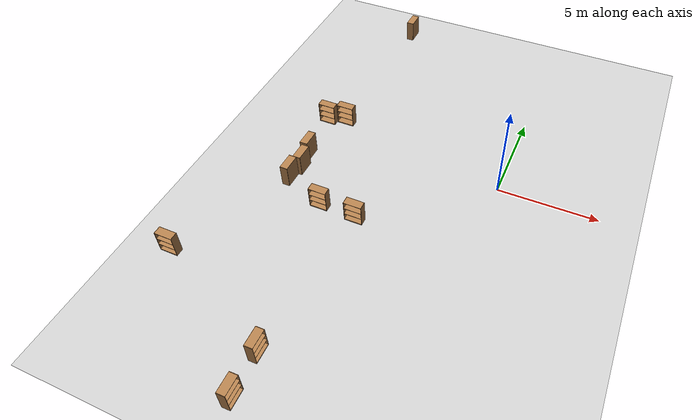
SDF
<sdf version="1.6">
 <world name="default">
  <model name="ground_plane">
   <static>1</static>
   <link name="link">
    <collision name="collision">
     <geometry><plane><normal>0 0 1</normal><size>100 100</size></plane></geometry>
     <surface>
      <contact><collide_bitmask>65535</collide_bitmask></contact>
      <friction><ode><mu>100</mu><mu2>50</mu2></ode></friction>
     </surface>
    </collision>
    <visual name="visual">
     <cast_shadows>0</cast_shadows>
     <geometry><plane><normal>0 0 1</normal><size>100 100</size></plane></geometry>
     <material>
      <script><uri>file://media/materials/scripts/gazebo.material</uri><name>Gazebo/Grey</name></script>
     </material>
    </visual>
   </link>
  </model>
  <model name="bookshelf_clone_clone_clone_0_clone_0_clone_3_clone_0_clone_clone_0">
   <static>1</static>
   <link name="link">
    <inertial><mass>1</mass></inertial>
    <collision name="back">
     <pose>0 0.005 0.6 0 -0 0</pose>
     <geometry><box><size>0.9 0.01 1.2</size></box></geometry>
    </collision>
    <visual name="visual1">
     <pose>0 0.005 0.6 0 -0 0</pose>
     <geometry><box><size>0.9 0.01 1.2</size></box></geometry>
     <material>
      <script><uri>file://media/materials/scripts/gazebo.material</uri><name>Gazebo/Wood</name></script>
     </material>
    </visual>
    <collision name="left_side">
     <pose>0.45 -0.195 0.6 0 -0 0</pose>
     <geometry><box><size>0.02 0.4 1.2</size></box></geometry>
    </collision>
    <visual name="visual2">
     <pose>0.45 -0.195 0.6 0 -0 0</pose>
     <geometry><box><size>0.02 0.4 1.2</size></box></geometry>
     <material>
      <script><uri>file://media/materials/scripts/gazebo.material</uri><name>Gazebo/Wood</name></script>
     </material>
    </visual>
    <collision name="right_side">
     <pose>-0.45 -0.195 0.6 0 -0 0</pose>
     <geometry><box><size>0.02 0.4 1.2</size></box></geometry>
    </collision>
    <visual name="visual3">
     <pose>-0.45 -0.195 0.6 0 -0 0</pose>
     <geometry><box><size>0.02 0.4 1.2</size></box></geometry>
     <material>
      <script><uri>file://media/materials/scripts/gazebo.material</uri><name>Gazebo/Wood</name></script>
     </material>
    </visual>
    <collision name="bottom">
     <pose>0 -0.195 0.03 0 -0 0</pose>
     <geometry><box><size>0.88 0.4 0.06</size></box></geometry>
    </collision>
    <visual name="visual4">
     <pose>0 -0.195 0.03 0 -0 0</pose>
     <geometry><box><size>0.88 0.4 0.06</size></box></geometry>
     <material>
      <script><uri>file://media/materials/scripts/gazebo.material</uri><name>Gazebo/Wood</name></script>
     </material>
    </visual>
    <collision name="top">
     <pose>0 -0.195 1.19 0 -0 0</pose>
     <geometry><box><size>0.88 0.4 0.02</size></box></geometry>
    </collision>
    <visual name="visual5">
     <pose>0 -0.195 1.19 0 -0 0</pose>
     <geometry><box><size>0.88 0.4 0.02</size></box></geometry>
     <material>
      <script><uri>file://media/materials/scripts/gazebo.material</uri><name>Gazebo/Wood</name></script>
     </material>
    </visual>
    <collision name="low_shelf">
     <pose>0 -0.195 0.43 0 -0 0</pose>
     <geometry><box><size>0.88 0.4 0.02</size></box></geometry>
    </collision>
    <visual name="visual6">
     <pose>0 -0.195 0.43 0 -0 0</pose>
     <geometry><box><size>0.88 0.4 0.02</size></box></geometry>
     <material>
      <script><uri>file://media/materials/scripts/gazebo.material</uri><name>Gazebo/Wood</name></script>
     </material>
    </visual>
    <collision name="high_shelf">
     <pose>0 -0.195 0.8 0 -0 0</pose>
     <geometry><box><size>0.88 0.4 0.02</size></box></geometry>
    </collision>
    <visual name="visual7">
     <pose>0 -0.195 0.8 0 -0 0</pose>
     <geometry><box><size>0.88 0.4 0.02</size></box></geometry>
     <material>
      <script><uri>file://media/materials/scripts/gazebo.material</uri><name>Gazebo/Wood</name></script>
     </material>
    </visual>
   </link>
   <pose>-5.6824 -4.32461 0 0 -0 0</pose>
  </model>
  <model name="bookshelf_clone_clone_clone_0_clone_0_clone_3_clone_0_clone_clone_2">
   <static>1</static>
   <link name="link">
    <inertial><mass>1</mass></inertial>
    <collision name="back">
     <pose>0 0.005 0.6 0 -0 0</pose>
     <geometry><box><size>0.9 0.01 1.2</size></box></geometry>
    </collision>
    <visual name="visual1">
     <pose>0 0.005 0.6 0 -0 0</pose>
     <geometry><box><size>0.9 0.01 1.2</size></box></geometry>
     <material>
      <script><uri>file://media/materials/scripts/gazebo.material</uri><name>Gazebo/Wood</name></script>
     </material>
    </visual>
    <collision name="left_side">
     <pose>0.45 -0.195 0.6 0 -0 0</pose>
     <geometry><box><size>0.02 0.4 1.2</size></box></geometry>
    </collision>
    <visual name="visual2">
     <pose>0.45 -0.195 0.6 0 -0 0</pose>
     <geometry><box><size>0.02 0.4 1.2</size></box></geometry>
     <material>
      <script><uri>file://media/materials/scripts/gazebo.material</uri><name>Gazebo/Wood</name></script>
     </material>
    </visual>
    <collision name="right_side">
     <pose>-0.45 -0.195 0.6 0 -0 0</pose>
     <geometry><box><size>0.02 0.4 1.2</size></box></geometry>
    </collision>
    <visual name="visual3">
     <pose>-0.45 -0.195 0.6 0 -0 0</pose>
     <geometry><box><size>0.02 0.4 1.2</size></box></geometry>
     <material>
      <script><uri>file://media/materials/scripts/gazebo.material</uri><name>Gazebo/Wood</name></script>
     </material>
    </visual>
    <collision name="bottom">
     <pose>0 -0.195 0.03 0 -0 0</pose>
     <geometry><box><size>0.88 0.4 0.06</size></box></geometry>
    </collision>
    <visual name="visual4">
     <pose>0 -0.195 0.03 0 -0 0</pose>
     <geometry><box><size>0.88 0.4 0.06</size></box></geometry>
     <material>
      <script><uri>file://media/materials/scripts/gazebo.material</uri><name>Gazebo/Wood</name></script>
     </material>
    </visual>
    <collision name="top">
     <pose>0 -0.195 1.19 0 -0 0</pose>
     <geometry><box><size>0.88 0.4 0.02</size></box></geometry>
    </collision>
    <visual name="visual5">
     <pose>0 -0.195 1.19 0 -0 0</pose>
     <geometry><box><size>0.88 0.4 0.02</size></box></geometry>
     <material>
      <script><uri>file://media/materials/scripts/gazebo.material</uri><name>Gazebo/Wood</name></script>
     </material>
    </visual>
    <collision name="low_shelf">
     <pose>0 -0.195 0.43 0 -0 0</pose>
     <geometry><box><size>0.88 0.4 0.02</size></box></geometry>
    </collision>
    <visual name="visual6">
     <pose>0 -0.195 0.43 0 -0 0</pose>
     <geometry><box><size>0.88 0.4 0.02</size></box></geometry>
     <material>
      <script><uri>file://media/materials/scripts/gazebo.material</uri><name>Gazebo/Wood</name></script>
     </material>
    </visual>
    <collision name="high_shelf">
     <pose>0 -0.195 0.8 0 -0 0</pose>
     <geometry><box><size>0.88 0.4 0.02</size></box></geometry>
    </collision>
    <visual name="visual7">
     <pose>0 -0.195 0.8 0 -0 0</pose>
     <geometry><box><size>0.88 0.4 0.02</size></box></geometry>
     <material>
      <script><uri>file://media/materials/scripts/gazebo.material</uri><name>Gazebo/Wood</name></script>
     </material>
    </visual>
   </link>
   <pose>-7.59607 -4.21389 0 0 -0 0</pose>
  </model>
  <model name="bookshelf_clone_0_clone_clone_2_clone_2_clone_3_clone_clone_clone_2_clone_1_clone_clone_0_clone">
   <static>1</static>
   <link name="link">
    <inertial><mass>1</mass></inertial>
    <collision name="back">
     <pose>0 0.005 0.6 0 -0 0</pose>
     <geometry><box><size>0.9 0.01 1.2</size></box></geometry>
    </collision>
    <visual name="visual1">
     <pose>0 0.005 0.6 0 -0 0</pose>
     <geometry><box><size>0.9 0.01 1.2</size></box></geometry>
     <material>
      <script><uri>file://media/materials/scripts/gazebo.material</uri><name>Gazebo/Wood</name></script>
     </material>
    </visual>
    <collision name="left_side">
     <pose>0.45 -0.195 0.6 0 -0 0</pose>
     <geometry><box><size>0.02 0.4 1.2</size></box></geometry>
    </collision>
    <visual name="visual2">
     <pose>0.45 -0.195 0.6 0 -0 0</pose>
     <geometry><box><size>0.02 0.4 1.2</size></box></geometry>
     <material>
      <script><uri>file://media/materials/scripts/gazebo.material</uri><name>Gazebo/Wood</name></script>
     </material>
    </visual>
    <collision name="right_side">
     <pose>-0.45 -0.195 0.6 0 -0 0</pose>
     <geometry><box><size>0.02 0.4 1.2</size></box></geometry>
    </collision>
    <visual name="visual3">
     <pose>-0.45 -0.195 0.6 0 -0 0</pose>
     <geometry><box><size>0.02 0.4 1.2</size></box></geometry>
     <material>
      <script><uri>file://media/materials/scripts/gazebo.material</uri><name>Gazebo/Wood</name></script>
     </material>
    </visual>
    <collision name="bottom">
     <pose>0 -0.195 0.03 0 -0 0</pose>
     <geometry><box><size>0.88 0.4 0.06</size></box></geometry>
    </collision>
    <visual name="visual4">
     <pose>0 -0.195 0.03 0 -0 0</pose>
     <geometry><box><size>0.88 0.4 0.06</size></box></geometry>
     <material>
      <script><uri>file://media/materials/scripts/gazebo.material</uri><name>Gazebo/Wood</name></script>
     </material>
    </visual>
    <collision name="top">
     <pose>0 -0.195 1.19 0 -0 0</pose>
     <geometry><box><size>0.88 0.4 0.02</size></box></geometry>
    </collision>
    <visual name="visual5">
     <pose>0 -0.195 1.19 0 -0 0</pose>
     <geometry><box><size>0.88 0.4 0.02</size></box></geometry>
     <material>
      <script><uri>file://media/materials/scripts/gazebo.material</uri><name>Gazebo/Wood</name></script>
     </material>
    </visual>
    <collision name="low_shelf">
     <pose>0 -0.195 0.43 0 -0 0</pose>
     <geometry><box><size>0.88 0.4 0.02</size></box></geometry>
    </collision>
    <visual name="visual6">
     <pose>0 -0.195 0.43 0 -0 0</pose>
     <geometry><box><size>0.88 0.4 0.02</size></box></geometry>
     <material>
      <script><uri>file://media/materials/scripts/gazebo.material</uri><name>Gazebo/Wood</name></script>
     </material>
    </visual>
    <collision name="high_shelf">
     <pose>0 -0.195 0.8 0 -0 0</pose>
     <geometry><box><size>0.88 0.4 0.02</size></box></geometry>
    </collision>
    <visual name="visual7">
     <pose>0 -0.195 0.8 0 -0 0</pose>
     <geometry><box><size>0.88 0.4 0.02</size></box></geometry>
     <material>
      <script><uri>file://media/materials/scripts/gazebo.material</uri><name>Gazebo/Wood</name></script>
     </material>
    </visual>
   </link>
   <pose>-6.41247 -12.2346 0 0 -0 1.58577</pose>
  </model>
  <model name="bookshelf_clone_0_clone_clone_2_clone_2_clone_3_clone_clone_clone_2_clone_1_clone_clone_0_clone_1">
   <static>1</static>
   <link name="link">
    <inertial><mass>1</mass></inertial>
    <collision name="back">
     <pose>0 0.005 0.6 0 -0 0</pose>
     <geometry><box><size>0.9 0.01 1.2</size></box></geometry>
    </collision>
    <visual name="visual1">
     <pose>0 0.005 0.6 0 -0 0</pose>
     <geometry><box><size>0.9 0.01 1.2</size></box></geometry>
     <material>
      <script><uri>file://media/materials/scripts/gazebo.material</uri><name>Gazebo/Wood</name></script>
     </material>
    </visual>
    <collision name="left_side">
     <pose>0.45 -0.195 0.6 0 -0 0</pose>
     <geometry><box><size>0.02 0.4 1.2</size></box></geometry>
    </collision>
    <visual name="visual2">
     <pose>0.45 -0.195 0.6 0 -0 0</pose>
     <geometry><box><size>0.02 0.4 1.2</size></box></geometry>
     <material>
      <script><uri>file://media/materials/scripts/gazebo.material</uri><name>Gazebo/Wood</name></script>
     </material>
    </visual>
    <collision name="right_side">
     <pose>-0.45 -0.195 0.6 0 -0 0</pose>
     <geometry><box><size>0.02 0.4 1.2</size></box></geometry>
    </collision>
    <visual name="visual3">
     <pose>-0.45 -0.195 0.6 0 -0 0</pose>
     <geometry><box><size>0.02 0.4 1.2</size></box></geometry>
     <material>
      <script><uri>file://media/materials/scripts/gazebo.material</uri><name>Gazebo/Wood</name></script>
     </material>
    </visual>
    <collision name="bottom">
     <pose>0 -0.195 0.03 0 -0 0</pose>
     <geometry><box><size>0.88 0.4 0.06</size></box></geometry>
    </collision>
    <visual name="visual4">
     <pose>0 -0.195 0.03 0 -0 0</pose>
     <geometry><box><size>0.88 0.4 0.06</size></box></geometry>
     <material>
      <script><uri>file://media/materials/scripts/gazebo.material</uri><name>Gazebo/Wood</name></script>
     </material>
    </visual>
    <collision name="top">
     <pose>0 -0.195 1.19 0 -0 0</pose>
     <geometry><box><size>0.88 0.4 0.02</size></box></geometry>
    </collision>
    <visual name="visual5">
     <pose>0 -0.195 1.19 0 -0 0</pose>
     <geometry><box><size>0.88 0.4 0.02</size></box></geometry>
     <material>
      <script><uri>file://media/materials/scripts/gazebo.material</uri><name>Gazebo/Wood</name></script>
     </material>
    </visual>
    <collision name="low_shelf">
     <pose>0 -0.195 0.43 0 -0 0</pose>
     <geometry><box><size>0.88 0.4 0.02</size></box></geometry>
    </collision>
    <visual name="visual6">
     <pose>0 -0.195 0.43 0 -0 0</pose>
     <geometry><box><size>0.88 0.4 0.02</size></box></geometry>
     <material>
      <script><uri>file://media/materials/scripts/gazebo.material</uri><name>Gazebo/Wood</name></script>
     </material>
    </visual>
    <collision name="high_shelf">
     <pose>0 -0.195 0.8 0 -0 0</pose>
     <geometry><box><size>0.88 0.4 0.02</size></box></geometry>
    </collision>
    <visual name="visual7">
     <pose>0 -0.195 0.8 0 -0 0</pose>
     <geometry><box><size>0.88 0.4 0.02</size></box></geometry>
     <material>
      <script><uri>file://media/materials/scripts/gazebo.material</uri><name>Gazebo/Wood</name></script>
     </material>
    </visual>
   </link>
   <pose>-6.31078 -14.2434 0 0 -0 1.58577</pose>
  </model>
  <model name="bookshelf_clone_clone_clone_0_clone_0_clone_3_clone_0_clone_clone_2_clone">
   <static>1</static>
   <link name="link">
    <inertial><mass>1</mass></inertial>
    <collision name="back">
     <pose>0 0.005 0.6 0 -0 0</pose>
     <geometry><box><size>0.9 0.01 1.2</size></box></geometry>
    </collision>
    <visual name="visual1">
     <pose>0 0.005 0.6 0 -0 0</pose>
     <geometry><box><size>0.9 0.01 1.2</size></box></geometry>
     <material>
      <script><uri>file://media/materials/scripts/gazebo.material</uri><name>Gazebo/Wood</name></script>
     </material>
    </visual>
    <collision name="left_side">
     <pose>0.45 -0.195 0.6 0 -0 0</pose>
     <geometry><box><size>0.02 0.4 1.2</size></box></geometry>
    </collision>
    <visual name="visual2">
     <pose>0.45 -0.195 0.6 0 -0 0</pose>
     <geometry><box><size>0.02 0.4 1.2</size></box></geometry>
     <material>
      <script><uri>file://media/materials/scripts/gazebo.material</uri><name>Gazebo/Wood</name></script>
     </material>
    </visual>
    <collision name="right_side">
     <pose>-0.45 -0.195 0.6 0 -0 0</pose>
     <geometry><box><size>0.02 0.4 1.2</size></box></geometry>
    </collision>
    <visual name="visual3">
     <pose>-0.45 -0.195 0.6 0 -0 0</pose>
     <geometry><box><size>0.02 0.4 1.2</size></box></geometry>
     <material>
      <script><uri>file://media/materials/scripts/gazebo.material</uri><name>Gazebo/Wood</name></script>
     </material>
    </visual>
    <collision name="bottom">
     <pose>0 -0.195 0.03 0 -0 0</pose>
     <geometry><box><size>0.88 0.4 0.06</size></box></geometry>
    </collision>
    <visual name="visual4">
     <pose>0 -0.195 0.03 0 -0 0</pose>
     <geometry><box><size>0.88 0.4 0.06</size></box></geometry>
     <material>
      <script><uri>file://media/materials/scripts/gazebo.material</uri><name>Gazebo/Wood</name></script>
     </material>
    </visual>
    <collision name="top">
     <pose>0 -0.195 1.19 0 -0 0</pose>
     <geometry><box><size>0.88 0.4 0.02</size></box></geometry>
    </collision>
    <visual name="visual5">
     <pose>0 -0.195 1.19 0 -0 0</pose>
     <geometry><box><size>0.88 0.4 0.02</size></box></geometry>
     <material>
      <script><uri>file://media/materials/scripts/gazebo.material</uri><name>Gazebo/Wood</name></script>
     </material>
    </visual>
    <collision name="low_shelf">
     <pose>0 -0.195 0.43 0 -0 0</pose>
     <geometry><box><size>0.88 0.4 0.02</size></box></geometry>
    </collision>
    <visual name="visual6">
     <pose>0 -0.195 0.43 0 -0 0</pose>
     <geometry><box><size>0.88 0.4 0.02</size></box></geometry>
     <material>
      <script><uri>file://media/materials/scripts/gazebo.material</uri><name>Gazebo/Wood</name></script>
     </material>
    </visual>
    <collision name="high_shelf">
     <pose>0 -0.195 0.8 0 -0 0</pose>
     <geometry><box><size>0.88 0.4 0.02</size></box></geometry>
    </collision>
    <visual name="visual7">
     <pose>0 -0.195 0.8 0 -0 0</pose>
     <geometry><box><size>0.88 0.4 0.02</size></box></geometry>
     <material>
      <script><uri>file://media/materials/scripts/gazebo.material</uri><name>Gazebo/Wood</name></script>
     </material>
    </visual>
   </link>
   <pose>-12.578 -9.24585 0 0 -0 0</pose>
  </model>
  <model name="bookshelf_clone_0_clone_clone_2_clone_2_clone_3_clone_clone_2_clone_0_clone_clone">
   <static>1</static>
   <link name="link">
    <inertial><mass>1</mass></inertial>
    <collision name="back">
     <pose>0 0.005 0.6 0 -0 0</pose>
     <geometry><box><size>0.9 0.01 1.2</size></box></geometry>
    </collision>
    <visual name="visual1">
     <pose>0 0.005 0.6 0 -0 0</pose>
     <geometry><box><size>0.9 0.01 1.2</size></box></geometry>
     <material>
      <script><uri>file://media/materials/scripts/gazebo.material</uri><name>Gazebo/Wood</name></script>
     </material>
    </visual>
    <collision name="left_side">
     <pose>0.45 -0.195 0.6 0 -0 0</pose>
     <geometry><box><size>0.02 0.4 1.2</size></box></geometry>
    </collision>
    <visual name="visual2">
     <pose>0.45 -0.195 0.6 0 -0 0</pose>
     <geometry><box><size>0.02 0.4 1.2</size></box></geometry>
     <material>
      <script><uri>file://media/materials/scripts/gazebo.material</uri><name>Gazebo/Wood</name></script>
     </material>
    </visual>
    <collision name="right_side">
     <pose>-0.45 -0.195 0.6 0 -0 0</pose>
     <geometry><box><size>0.02 0.4 1.2</size></box></geometry>
    </collision>
    <visual name="visual3">
     <pose>-0.45 -0.195 0.6 0 -0 0</pose>
     <geometry><box><size>0.02 0.4 1.2</size></box></geometry>
     <material>
      <script><uri>file://media/materials/scripts/gazebo.material</uri><name>Gazebo/Wood</name></script>
     </material>
    </visual>
    <collision name="bottom">
     <pose>0 -0.195 0.03 0 -0 0</pose>
     <geometry><box><size>0.88 0.4 0.06</size></box></geometry>
    </collision>
    <visual name="visual4">
     <pose>0 -0.195 0.03 0 -0 0</pose>
     <geometry><box><size>0.88 0.4 0.06</size></box></geometry>
     <material>
      <script><uri>file://media/materials/scripts/gazebo.material</uri><name>Gazebo/Wood</name></script>
     </material>
    </visual>
    <collision name="top">
     <pose>0 -0.195 1.19 0 -0 0</pose>
     <geometry><box><size>0.88 0.4 0.02</size></box></geometry>
    </collision>
    <visual name="visual5">
     <pose>0 -0.195 1.19 0 -0 0</pose>
     <geometry><box><size>0.88 0.4 0.02</size></box></geometry>
     <material>
      <script><uri>file://media/materials/scripts/gazebo.material</uri><name>Gazebo/Wood</name></script>
     </material>
    </visual>
    <collision name="low_shelf">
     <pose>0 -0.195 0.43 0 -0 0</pose>
     <geometry><box><size>0.88 0.4 0.02</size></box></geometry>
    </collision>
    <visual name="visual6">
     <pose>0 -0.195 0.43 0 -0 0</pose>
     <geometry><box><size>0.88 0.4 0.02</size></box></geometry>
     <material>
      <script><uri>file://media/materials/scripts/gazebo.material</uri><name>Gazebo/Wood</name></script>
     </material>
    </visual>
    <collision name="high_shelf">
     <pose>0 -0.195 0.8 0 -0 0</pose>
     <geometry><box><size>0.88 0.4 0.02</size></box></geometry>
    </collision>
    <visual name="visual7">
     <pose>0 -0.195 0.8 0 -0 0</pose>
     <geometry><box><size>0.88 0.4 0.02</size></box></geometry>
     <material>
      <script><uri>file://media/materials/scripts/gazebo.material</uri><name>Gazebo/Wood</name></script>
     </material>
    </visual>
   </link>
   <pose>-9.60302 -3.43122 0 0 0 -1.58271</pose>
  </model>
  <model name="bookshelf_clone_0_clone_clone_2_clone_2_clone_3_clone_clone_2_clone_0_clone_clone_0">
   <static>1</static>
   <link name="link">
    <inertial><mass>1</mass></inertial>
    <collision name="back">
     <pose>0 0.005 0.6 0 -0 0</pose>
     <geometry><box><size>0.9 0.01 1.2</size></box></geometry>
    </collision>
    <visual name="visual1">
     <pose>0 0.005 0.6 0 -0 0</pose>
     <geometry><box><size>0.9 0.01 1.2</size></box></geometry>
     <material>
      <script><uri>file://media/materials/scripts/gazebo.material</uri><name>Gazebo/Wood</name></script>
     </material>
    </visual>
    <collision name="left_side">
     <pose>0.45 -0.195 0.6 0 -0 0</pose>
     <geometry><box><size>0.02 0.4 1.2</size></box></geometry>
    </collision>
    <visual name="visual2">
     <pose>0.45 -0.195 0.6 0 -0 0</pose>
     <geometry><box><size>0.02 0.4 1.2</size></box></geometry>
     <material>
      <script><uri>file://media/materials/scripts/gazebo.material</uri><name>Gazebo/Wood</name></script>
     </material>
    </visual>
    <collision name="right_side">
     <pose>-0.45 -0.195 0.6 0 -0 0</pose>
     <geometry><box><size>0.02 0.4 1.2</size></box></geometry>
    </collision>
    <visual name="visual3">
     <pose>-0.45 -0.195 0.6 0 -0 0</pose>
     <geometry><box><size>0.02 0.4 1.2</size></box></geometry>
     <material>
      <script><uri>file://media/materials/scripts/gazebo.material</uri><name>Gazebo/Wood</name></script>
     </material>
    </visual>
    <collision name="bottom">
     <pose>0 -0.195 0.03 0 -0 0</pose>
     <geometry><box><size>0.88 0.4 0.06</size></box></geometry>
    </collision>
    <visual name="visual4">
     <pose>0 -0.195 0.03 0 -0 0</pose>
     <geometry><box><size>0.88 0.4 0.06</size></box></geometry>
     <material>
      <script><uri>file://media/materials/scripts/gazebo.material</uri><name>Gazebo/Wood</name></script>
     </material>
    </visual>
    <collision name="top">
     <pose>0 -0.195 1.19 0 -0 0</pose>
     <geometry><box><size>0.88 0.4 0.02</size></box></geometry>
    </collision>
    <visual name="visual5">
     <pose>0 -0.195 1.19 0 -0 0</pose>
     <geometry><box><size>0.88 0.4 0.02</size></box></geometry>
     <material>
      <script><uri>file://media/materials/scripts/gazebo.material</uri><name>Gazebo/Wood</name></script>
     </material>
    </visual>
    <collision name="low_shelf">
     <pose>0 -0.195 0.43 0 -0 0</pose>
     <geometry><box><size>0.88 0.4 0.02</size></box></geometry>
    </collision>
    <visual name="visual6">
     <pose>0 -0.195 0.43 0 -0 0</pose>
     <geometry><box><size>0.88 0.4 0.02</size></box></geometry>
     <material>
      <script><uri>file://media/materials/scripts/gazebo.material</uri><name>Gazebo/Wood</name></script>
     </material>
    </visual>
    <collision name="high_shelf">
     <pose>0 -0.195 0.8 0 -0 0</pose>
     <geometry><box><size>0.88 0.4 0.02</size></box></geometry>
    </collision>
    <visual name="visual7">
     <pose>0 -0.195 0.8 0 -0 0</pose>
     <geometry><box><size>0.88 0.4 0.02</size></box></geometry>
     <material>
      <script><uri>file://media/materials/scripts/gazebo.material</uri><name>Gazebo/Wood</name></script>
     </material>
    </visual>
   </link>
   <pose>-9.40043 -2.52177 0 0 0 -1.58271</pose>
  </model>
  <model name="bookshelf_clone_0_clone_clone_2_clone_2_clone_3_clone_clone_2_clone_0_clone_clone_1">
   <static>1</static>
   <link name="link">
    <inertial><mass>1</mass></inertial>
    <collision name="back">
     <pose>0 0.005 0.6 0 -0 0</pose>
     <geometry><box><size>0.9 0.01 1.2</size></box></geometry>
    </collision>
    <visual name="visual1">
     <pose>0 0.005 0.6 0 -0 0</pose>
     <geometry><box><size>0.9 0.01 1.2</size></box></geometry>
     <material>
      <script><uri>file://media/materials/scripts/gazebo.material</uri><name>Gazebo/Wood</name></script>
     </material>
    </visual>
    <collision name="left_side">
     <pose>0.45 -0.195 0.6 0 -0 0</pose>
     <geometry><box><size>0.02 0.4 1.2</size></box></geometry>
    </collision>
    <visual name="visual2">
     <pose>0.45 -0.195 0.6 0 -0 0</pose>
     <geometry><box><size>0.02 0.4 1.2</size></box></geometry>
     <material>
      <script><uri>file://media/materials/scripts/gazebo.material</uri><name>Gazebo/Wood</name></script>
     </material>
    </visual>
    <collision name="right_side">
     <pose>-0.45 -0.195 0.6 0 -0 0</pose>
     <geometry><box><size>0.02 0.4 1.2</size></box></geometry>
    </collision>
    <visual name="visual3">
     <pose>-0.45 -0.195 0.6 0 -0 0</pose>
     <geometry><box><size>0.02 0.4 1.2</size></box></geometry>
     <material>
      <script><uri>file://media/materials/scripts/gazebo.material</uri><name>Gazebo/Wood</name></script>
     </material>
    </visual>
    <collision name="bottom">
     <pose>0 -0.195 0.03 0 -0 0</pose>
     <geometry><box><size>0.88 0.4 0.06</size></box></geometry>
    </collision>
    <visual name="visual4">
     <pose>0 -0.195 0.03 0 -0 0</pose>
     <geometry><box><size>0.88 0.4 0.06</size></box></geometry>
     <material>
      <script><uri>file://media/materials/scripts/gazebo.material</uri><name>Gazebo/Wood</name></script>
     </material>
    </visual>
    <collision name="top">
     <pose>0 -0.195 1.19 0 -0 0</pose>
     <geometry><box><size>0.88 0.4 0.02</size></box></geometry>
    </collision>
    <visual name="visual5">
     <pose>0 -0.195 1.19 0 -0 0</pose>
     <geometry><box><size>0.88 0.4 0.02</size></box></geometry>
     <material>
      <script><uri>file://media/materials/scripts/gazebo.material</uri><name>Gazebo/Wood</name></script>
     </material>
    </visual>
    <collision name="low_shelf">
     <pose>0 -0.195 0.43 0 -0 0</pose>
     <geometry><box><size>0.88 0.4 0.02</size></box></geometry>
    </collision>
    <visual name="visual6">
     <pose>0 -0.195 0.43 0 -0 0</pose>
     <geometry><box><size>0.88 0.4 0.02</size></box></geometry>
     <material>
      <script><uri>file://media/materials/scripts/gazebo.material</uri><name>Gazebo/Wood</name></script>
     </material>
    </visual>
    <collision name="high_shelf">
     <pose>0 -0.195 0.8 0 -0 0</pose>
     <geometry><box><size>0.88 0.4 0.02</size></box></geometry>
    </collision>
    <visual name="visual7">
     <pose>0 -0.195 0.8 0 -0 0</pose>
     <geometry><box><size>0.88 0.4 0.02</size></box></geometry>
     <material>
      <script><uri>file://media/materials/scripts/gazebo.material</uri><name>Gazebo/Wood</name></script>
     </material>
    </visual>
   </link>
   <pose>-9.56984 -1.50771 0 0 0 -1.58271</pose>
  </model>
  <model name="bookshelf_clone_clone_clone_0_clone_0_clone_3_clone_0_clone_clone_2_clone_0">
   <static>1</static>
   <link name="link">
    <inertial><mass>1</mass></inertial>
    <collision name="back">
     <pose>0 0.005 0.6 0 -0 0</pose>
     <geometry><box><size>0.9 0.01 1.2</size></box></geometry>
    </collision>
    <visual name="visual1">
     <pose>0 0.005 0.6 0 -0 0</pose>
     <geometry><box><size>0.9 0.01 1.2</size></box></geometry>
     <material>
      <script><uri>file://media/materials/scripts/gazebo.material</uri><name>Gazebo/Wood</name></script>
     </material>
    </visual>
    <collision name="left_side">
     <pose>0.45 -0.195 0.6 0 -0 0</pose>
     <geometry><box><size>0.02 0.4 1.2</size></box></geometry>
    </collision>
    <visual name="visual2">
     <pose>0.45 -0.195 0.6 0 -0 0</pose>
     <geometry><box><size>0.02 0.4 1.2</size></box></geometry>
     <material>
      <script><uri>file://media/materials/scripts/gazebo.material</uri><name>Gazebo/Wood</name></script>
     </material>
    </visual>
    <collision name="right_side">
     <pose>-0.45 -0.195 0.6 0 -0 0</pose>
     <geometry><box><size>0.02 0.4 1.2</size></box></geometry>
    </collision>
    <visual name="visual3">
     <pose>-0.45 -0.195 0.6 0 -0 0</pose>
     <geometry><box><size>0.02 0.4 1.2</size></box></geometry>
     <material>
      <script><uri>file://media/materials/scripts/gazebo.material</uri><name>Gazebo/Wood</name></script>
     </material>
    </visual>
    <collision name="bottom">
     <pose>0 -0.195 0.03 0 -0 0</pose>
     <geometry><box><size>0.88 0.4 0.06</size></box></geometry>
    </collision>
    <visual name="visual4">
     <pose>0 -0.195 0.03 0 -0 0</pose>
     <geometry><box><size>0.88 0.4 0.06</size></box></geometry>
     <material>
      <script><uri>file://media/materials/scripts/gazebo.material</uri><name>Gazebo/Wood</name></script>
     </material>
    </visual>
    <collision name="top">
     <pose>0 -0.195 1.19 0 -0 0</pose>
     <geometry><box><size>0.88 0.4 0.02</size></box></geometry>
    </collision>
    <visual name="visual5">
     <pose>0 -0.195 1.19 0 -0 0</pose>
     <geometry><box><size>0.88 0.4 0.02</size></box></geometry>
     <material>
      <script><uri>file://media/materials/scripts/gazebo.material</uri><name>Gazebo/Wood</name></script>
     </material>
    </visual>
    <collision name="low_shelf">
     <pose>0 -0.195 0.43 0 -0 0</pose>
     <geometry><box><size>0.88 0.4 0.02</size></box></geometry>
    </collision>
    <visual name="visual6">
     <pose>0 -0.195 0.43 0 -0 0</pose>
     <geometry><box><size>0.88 0.4 0.02</size></box></geometry>
     <material>
      <script><uri>file://media/materials/scripts/gazebo.material</uri><name>Gazebo/Wood</name></script>
     </material>
    </visual>
    <collision name="high_shelf">
     <pose>0 -0.195 0.8 0 -0 0</pose>
     <geometry><box><size>0.88 0.4 0.02</size></box></geometry>
    </collision>
    <visual name="visual7">
     <pose>0 -0.195 0.8 0 -0 0</pose>
     <geometry><box><size>0.88 0.4 0.02</size></box></geometry>
     <material>
      <script><uri>file://media/materials/scripts/gazebo.material</uri><name>Gazebo/Wood</name></script>
     </material>
    </visual>
   </link>
   <pose>-10.0359 1.42803 0 0 -0 0</pose>
  </model>
  <model name="bookshelf_clone_clone_clone_0_clone_0_clone_3_clone_0_clone_clone_2_clone_1">
   <static>1</static>
   <link name="link">
    <inertial><mass>1</mass></inertial>
    <collision name="back">
     <pose>0 0.005 0.6 0 -0 0</pose>
     <geometry><box><size>0.9 0.01 1.2</size></box></geometry>
    </collision>
    <visual name="visual1">
     <pose>0 0.005 0.6 0 -0 0</pose>
     <geometry><box><size>0.9 0.01 1.2</size></box></geometry>
     <material>
      <script><uri>file://media/materials/scripts/gazebo.material</uri><name>Gazebo/Wood</name></script>
     </material>
    </visual>
    <collision name="left_side">
     <pose>0.45 -0.195 0.6 0 -0 0</pose>
     <geometry><box><size>0.02 0.4 1.2</size></box></geometry>
    </collision>
    <visual name="visual2">
     <pose>0.45 -0.195 0.6 0 -0 0</pose>
     <geometry><box><size>0.02 0.4 1.2</size></box></geometry>
     <material>
      <script><uri>file://media/materials/scripts/gazebo.material</uri><name>Gazebo/Wood</name></script>
     </material>
    </visual>
    <collision name="right_side">
     <pose>-0.45 -0.195 0.6 0 -0 0</pose>
     <geometry><box><size>0.02 0.4 1.2</size></box></geometry>
    </collision>
    <visual name="visual3">
     <pose>-0.45 -0.195 0.6 0 -0 0</pose>
     <geometry><box><size>0.02 0.4 1.2</size></box></geometry>
     <material>
      <script><uri>file://media/materials/scripts/gazebo.material</uri><name>Gazebo/Wood</name></script>
     </material>
    </visual>
    <collision name="bottom">
     <pose>0 -0.195 0.03 0 -0 0</pose>
     <geometry><box><size>0.88 0.4 0.06</size></box></geometry>
    </collision>
    <visual name="visual4">
     <pose>0 -0.195 0.03 0 -0 0</pose>
     <geometry><box><size>0.88 0.4 0.06</size></box></geometry>
     <material>
      <script><uri>file://media/materials/scripts/gazebo.material</uri><name>Gazebo/Wood</name></script>
     </material>
    </visual>
    <collision name="top">
     <pose>0 -0.195 1.19 0 -0 0</pose>
     <geometry><box><size>0.88 0.4 0.02</size></box></geometry>
    </collision>
    <visual name="visual5">
     <pose>0 -0.195 1.19 0 -0 0</pose>
     <geometry><box><size>0.88 0.4 0.02</size></box></geometry>
     <material>
      <script><uri>file://media/materials/scripts/gazebo.material</uri><name>Gazebo/Wood</name></script>
     </material>
    </visual>
    <collision name="low_shelf">
     <pose>0 -0.195 0.43 0 -0 0</pose>
     <geometry><box><size>0.88 0.4 0.02</size></box></geometry>
    </collision>
    <visual name="visual6">
     <pose>0 -0.195 0.43 0 -0 0</pose>
     <geometry><box><size>0.88 0.4 0.02</size></box></geometry>
     <material>
      <script><uri>file://media/materials/scripts/gazebo.material</uri><name>Gazebo/Wood</name></script>
     </material>
    </visual>
    <collision name="high_shelf">
     <pose>0 -0.195 0.8 0 -0 0</pose>
     <geometry><box><size>0.88 0.4 0.02</size></box></geometry>
    </collision>
    <visual name="visual7">
     <pose>0 -0.195 0.8 0 -0 0</pose>
     <geometry><box><size>0.88 0.4 0.02</size></box></geometry>
     <material>
      <script><uri>file://media/materials/scripts/gazebo.material</uri><name>Gazebo/Wood</name></script>
     </material>
    </visual>
   </link>
   <pose>-9.08042 1.71614 0 0 -0 0</pose>
  </model>
  <model name="bookshelf_clone_0_clone_clone_2_clone_2_clone_3_clone_clone_2_clone_0_clone_1">
   <static>1</static>
   <link name="link">
    <inertial><mass>1</mass></inertial>
    <collision name="back">
     <pose>0 0.005 0.6 0 -0 0</pose>
     <geometry><box><size>0.9 0.01 1.2</size></box></geometry>
    </collision>
    <visual name="visual1">
     <pose>0 0.005 0.6 0 -0 0</pose>
     <geometry><box><size>0.9 0.01 1.2</size></box></geometry>
     <material>
      <script><uri>file://media/materials/scripts/gazebo.material</uri><name>Gazebo/Wood</name></script>
     </material>
    </visual>
    <collision name="left_side">
     <pose>0.45 -0.195 0.6 0 -0 0</pose>
     <geometry><box><size>0.02 0.4 1.2</size></box></geometry>
    </collision>
    <visual name="visual2">
     <pose>0.45 -0.195 0.6 0 -0 0</pose>
     <geometry><box><size>0.02 0.4 1.2</size></box></geometry>
     <material>
      <script><uri>file://media/materials/scripts/gazebo.material</uri><name>Gazebo/Wood</name></script>
     </material>
    </visual>
    <collision name="right_side">
     <pose>-0.45 -0.195 0.6 0 -0 0</pose>
     <geometry><box><size>0.02 0.4 1.2</size></box></geometry>
    </collision>
    <visual name="visual3">
     <pose>-0.45 -0.195 0.6 0 -0 0</pose>
     <geometry><box><size>0.02 0.4 1.2</size></box></geometry>
     <material>
      <script><uri>file://media/materials/scripts/gazebo.material</uri><name>Gazebo/Wood</name></script>
     </material>
    </visual>
    <collision name="bottom">
     <pose>0 -0.195 0.03 0 -0 0</pose>
     <geometry><box><size>0.88 0.4 0.06</size></box></geometry>
    </collision>
    <visual name="visual4">
     <pose>0 -0.195 0.03 0 -0 0</pose>
     <geometry><box><size>0.88 0.4 0.06</size></box></geometry>
     <material>
      <script><uri>file://media/materials/scripts/gazebo.material</uri><name>Gazebo/Wood</name></script>
     </material>
    </visual>
    <collision name="top">
     <pose>0 -0.195 1.19 0 -0 0</pose>
     <geometry><box><size>0.88 0.4 0.02</size></box></geometry>
    </collision>
    <visual name="visual5">
     <pose>0 -0.195 1.19 0 -0 0</pose>
     <geometry><box><size>0.88 0.4 0.02</size></box></geometry>
     <material>
      <script><uri>file://media/materials/scripts/gazebo.material</uri><name>Gazebo/Wood</name></script>
     </material>
    </visual>
    <collision name="low_shelf">
     <pose>0 -0.195 0.43 0 -0 0</pose>
     <geometry><box><size>0.88 0.4 0.02</size></box></geometry>
    </collision>
    <visual name="visual6">
     <pose>0 -0.195 0.43 0 -0 0</pose>
     <geometry><box><size>0.88 0.4 0.02</size></box></geometry>
     <material>
      <script><uri>file://media/materials/scripts/gazebo.material</uri><name>Gazebo/Wood</name></script>
     </material>
    </visual>
    <collision name="high_shelf">
     <pose>0 -0.195 0.8 0 -0 0</pose>
     <geometry><box><size>0.88 0.4 0.02</size></box></geometry>
    </collision>
    <visual name="visual7">
     <pose>0 -0.195 0.8 0 -0 0</pose>
     <geometry><box><size>0.88 0.4 0.02</size></box></geometry>
     <material>
      <script><uri>file://media/materials/scripts/gazebo.material</uri><name>Gazebo/Wood</name></script>
     </material>
    </visual>
   </link>
   <pose>-8.69441 10.5553 0 0 0 -1.58271</pose>
  </model>
 </world>
</sdf>
